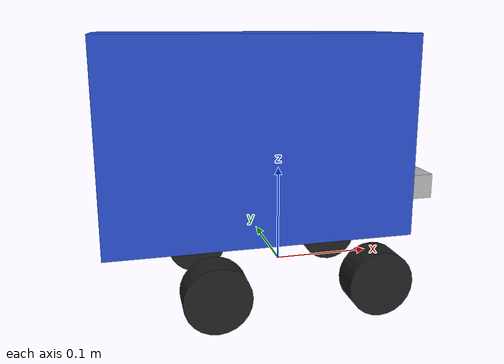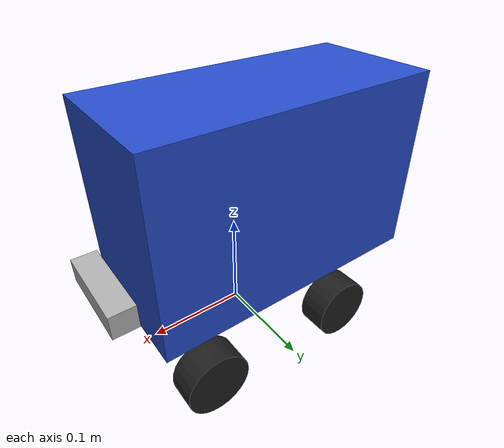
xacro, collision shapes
<?xml version="1.0"?>
<robot name="anhc_robot" xmlns:xacro="http://www.ros.org/wiki/xacro">

  <!-- ── Include subsystem xacros ────────────────────────────── -->
  <xacro:include filename="$(find anhc_robot_description)/urdf/mech/anhc_base.xacro"/>
  <xacro:include filename="$(find anhc_robot_description)/urdf/sensors/anhc_lidar_2d.xacro"/>
  <xacro:include filename="$(find anhc_robot_description)/urdf/sensors/anhc_camera.xacro"/>
  <xacro:include filename="$(find anhc_robot_description)/urdf/control/anhc_control.xacro"/>

  <!-- ── Material Definitions ────────────────────────────────── -->
  <material name="anhc_chassis_material"> <color rgba="0.2 0.5 0.8 1.0"/> </material>
  <material name="anhc_wheel_material">   <color rgba="0.1 0.1 0.1 1.0"/> </material>
  <material name="anhc_lidar_material">   <color rgba="0.8 0.1 0.1 1.0"/> </material>
  <material name="anhc_lidar2d_material"> <color rgba="0.1 0.8 0.1 1.0"/> </material>
  <material name="anhc_camera_material">  <color rgba="0.1 0.1 0.1 1.0"/> </material>

  <!-- ── Instantiate Mechanical Base ─────────────────────────── -->
  <!-- (base.xacro defines base_footprint, base_link, 4 wheels) -->

  <!-- 3D LiDAR is disabled for the old robot profile -->

  <!-- ── Place 2D LiDAR on top-front of chassis ───────────────── -->
  <!-- Tuned to stay visually attached to the body mesh -->
  <xacro:anhc_lidar_2d
    parent_link="base_link"
    xyz="0.03 0.0 0.08"
    rpy="0 0 0"/>

  <!-- ── Place RGB Camera on top-front, near LiDAR ────────────── -->
  <xacro:anhc_camera
    parent_link="base_link"
    xyz="0.14 0.0 0.05"
    rpy="0 0 0"/>

  <!-- ── Instantiate ros2_control + Gazebo plugins ────────────── -->
  <xacro:anhc_control/>

  <!-- ── IMU Link (for TF completeness) ──────────────────────── -->
  <link name="anhc_imu_link">
    <inertial>
      <mass value="0.01"/>
      <inertia ixx="0.0001" ixy="0" ixz="0"
               iyy="0.0001" iyz="0"
               izz="0.0001"/>
    </inertial>
  </link>
  <joint name="anhc_imu_joint" type="fixed">
    <parent link="base_link"/>
    <child  link="anhc_imu_link"/>
    <origin xyz="0 0 0" rpy="0 0 0"/>
  </joint>

  <!-- ── Gazebo Physics Properties ────────────────────────────── -->
  <gazebo reference="base_link">
    <mu1>0.8</mu1>
    <mu2>0.8</mu2>
    <kp>1e6</kp>
    <kd>1.0</kd>
    <material>Gazebo/Blue</material>
  </gazebo>

  <gazebo reference="front_left_wheel_link">
    <mu1>1.0</mu1><mu2>1.0</mu2><kp>1e6</kp><kd>1.0</kd>
    <material>Gazebo/Black</material>
  </gazebo>
  <gazebo reference="front_right_wheel_link">
    <mu1>1.0</mu1><mu2>1.0</mu2><kp>1e6</kp><kd>1.0</kd>
    <material>Gazebo/Black</material>
  </gazebo>
  <gazebo reference="back_left_wheel_link">
    <mu1>1.0</mu1><mu2>1.0</mu2><kp>1e6</kp><kd>1.0</kd>
    <material>Gazebo/Black</material>
  </gazebo>
  <gazebo reference="back_right_wheel_link">
    <mu1>1.0</mu1><mu2>1.0</mu2><kp>1e6</kp><kd>1.0</kd>
    <material>Gazebo/Black</material>
  </gazebo>

</robot>

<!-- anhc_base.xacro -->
<robot xmlns:xacro="http://www.ros.org/wiki/xacro">

  <!-- Rosmaster X3 dimensions -->
  <xacro:property name="total_width" value="0.19940"/>
  <xacro:property name="wheel_width" value="0.0304"/>
  <xacro:property name="wheel_radius" value="0.0325"/>
  <xacro:property name="total_height" value="0.26225"/>
  <xacro:property name="base_length" value="0.300"/>
  <xacro:property name="centered_length" value="0.238"/>
  <xacro:property name="base_x_offset" value="${(centered_length - base_length) / 2}"/>
  <xacro:property name="base_size_x" value="${base_length}"/>
  <xacro:property name="base_size_y" value="${total_width - (2 * wheel_width)}"/>
  <xacro:property name="base_size_z" value="${total_height - (2 * wheel_radius)}"/>
  <xacro:property name="base_mass" value="4.6"/>

  <xacro:property name="wheel_mass" value="0.091"/>
  <xacro:property name="wheel_xoff" value="0.08"/>
  <xacro:property name="wheel_yoff" value="-0.01"/>
  <xacro:property name="wheel_separation" value="0.169"/>

  <xacro:macro name="rosmaster_wheel" params="side joint_name x_reflect y_reflect mesh_name">
    <link name="${side}_wheel_link">
      <visual>
        <origin xyz="0 0 0" rpy="${pi/2} 0 0"/>
        <geometry>
          <mesh filename="file://$(find anhc_robot_description)/meshes/rosmaster_x3/visual/${mesh_name}"/>
        </geometry>
      </visual>
      <collision>
        <origin xyz="0 0 0" rpy="${pi/2} 0 0"/>
        <geometry>
          <cylinder radius="${wheel_radius}" length="${wheel_width}"/>
        </geometry>
      </collision>
      <inertial>
        <origin xyz="0 0 0" rpy="0 0 0"/>
        <mass value="${wheel_mass}"/>
        <inertia
          ixx="${(wheel_mass/12.0) * (3*wheel_radius*wheel_radius + wheel_width*wheel_width)}" ixy="0" ixz="0"
          iyy="${(wheel_mass/2.0) * (wheel_radius*wheel_radius)}" iyz="0"
          izz="${(wheel_mass/12.0) * (3*wheel_radius*wheel_radius + wheel_width*wheel_width)}"/>
      </inertial>
    </link>

    <joint name="${joint_name}" type="continuous">
      <axis xyz="0 1 0"/>
      <parent link="base_link"/>
      <child link="${side}_wheel_link"/>
      <origin xyz="${x_reflect*wheel_xoff} ${y_reflect*(wheel_separation/2+wheel_yoff)} ${-wheel_radius}" rpy="0 0 0"/>
    </joint>

    <gazebo reference="${side}_wheel_link">
      <mu1>1.0</mu1>
      <mu2>0.0</mu2>
    </gazebo>
  </xacro:macro>

  <link name="base_footprint"/>
  <link name="base_link">
    <visual>
      <geometry>
        <mesh filename="file://$(find anhc_robot_description)/meshes/rosmaster_x3/visual/base_link_X3.STL"/>
      </geometry>
      <origin xyz="0 0 0" rpy="0 0 0"/>
    </visual>
    <collision>
      <geometry>
        <box size="${base_size_x} ${base_size_y} ${base_size_z}"/>
      </geometry>
      <origin xyz="${base_x_offset} 0 ${base_size_z/2 + wheel_radius/4}" rpy="0 0 0"/>
    </collision>
    <inertial>
      <origin xyz="${base_x_offset} 0 ${base_size_z/2 + wheel_radius/4}" rpy="0 0 0"/>
      <mass value="${base_mass}"/>
      <inertia
        ixx="${(1/12) * base_mass * ((base_size_y * base_size_y) + (base_size_z * base_size_z))}" ixy="0.0" ixz="0.0"
        iyy="${(1/12) * base_mass * ((base_size_x * base_size_x) + (base_size_z * base_size_z))}" iyz="0.0"
        izz="${(1/12) * base_mass * ((base_size_x * base_size_x) + (base_size_y * base_size_y))}"/>
    </inertial>
  </link>

  <joint name="base_joint" type="fixed">
    <parent link="base_footprint"/>
    <child link="base_link"/>
    <origin xyz="0 0 ${wheel_radius}" rpy="0 0 0"/>
  </joint>

  <xacro:rosmaster_wheel side="front_left"  joint_name="front_left_wheel_joint"  x_reflect=" 1" y_reflect=" 1" mesh_name="front_left_wheel_X3.STL"/>
  <xacro:rosmaster_wheel side="front_right" joint_name="front_right_wheel_joint" x_reflect=" 1" y_reflect="-1" mesh_name="front_right_wheel_X3.STL"/>
  <xacro:rosmaster_wheel side="back_left"   joint_name="back_left_wheel_joint"   x_reflect="-1" y_reflect=" 1" mesh_name="back_left_wheel_X3.STL"/>
  <xacro:rosmaster_wheel side="back_right"  joint_name="back_right_wheel_joint"  x_reflect="-1" y_reflect="-1" mesh_name="back_right_wheel_X3.STL"/>

</robot>

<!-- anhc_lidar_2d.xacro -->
<robot xmlns:xacro="http://www.ros.org/wiki/xacro">
  <xacro:macro name="anhc_lidar_2d" params="parent_link xyz rpy">

    <link name="laser_frame">
      <visual>
        <!-- Original RPLidar mesh, rotated to match ROS X-forward convention -->
        <origin xyz="0 0 0" rpy="${-pi/2} 0 0"/>
        <geometry>
          <mesh filename="file://$(find anhc_robot_description)/meshes/rplidar/rplidar_s2.stl" scale="0.001 0.001 0.001"/>
        </geometry>
        <material name="anhc_lidar2d_mat">
          <color rgba="0.1 0.1 0.1 1.0"/>
        </material>
      </visual>
      <collision>
        <origin xyz="0 0 0" rpy="0 0 0"/>
        <geometry><cylinder radius="0.0385" length="0.0398"/></geometry>
      </collision>
      <inertial>
        <mass value="0.185"/>
        <inertia ixx="0.000128" ixy="0" ixz="0"
                 iyy="0.000128" iyz="0" izz="0.000659"/>
      </inertial>
    </link>

    <joint name="anhc_lidar_2d_joint" type="fixed">
      <parent link="${parent_link}"/>
      <child  link="laser_frame"/>
      <origin xyz="${xyz}" rpy="${rpy}"/>
    </joint>

    <gazebo reference="laser_frame">
      <sensor name="anhc_lidar_2d_sensor" type="lidar">
        <pose>0 0 0 0 0 0</pose>
        <topic>/anhc/scan</topic>
        <frame_id>laser_frame</frame_id>
        <update_rate>10</update_rate>
        <always_on>true</always_on>
        <visualize>false</visualize>
        <ray>
          <scan>
            <horizontal>
              <samples>360</samples>
              <resolution>1</resolution>
              <min_angle>-3.14159</min_angle>
              <max_angle>3.14159</max_angle>
            </horizontal>
            <vertical>
              <samples>1</samples>
              <resolution>1</resolution>
              <min_angle>0</min_angle>
              <max_angle>0</max_angle>
            </vertical>
          </scan>
          <range>
            <min>0.20</min>
            <max>30.0</max>
            <resolution>0.013</resolution>
          </range>
        </ray>
      </sensor>
    </gazebo>

  </xacro:macro>
</robot>

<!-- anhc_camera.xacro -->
<robot xmlns:xacro="http://www.ros.org/wiki/xacro">

  <xacro:macro name="anhc_camera" params="parent_link xyz rpy">

    <link name="camera_link">
      <visual>
        <!-- Original D435 mesh with corrected local orientation -->
        <origin xyz="0 0 0" rpy="${pi/2} 0 ${pi/2}"/>
        <geometry>
          <mesh filename="file://$(find anhc_robot_description)/meshes/intel_realsense/visual/d435.stl"/>
        </geometry>
      </visual>
      <collision>
        <origin xyz="0 0 0" rpy="0 0 0"/>
        <geometry><box size="0.025 0.09 0.025"/></geometry>
      </collision>
      <inertial>
        <mass value="0.02"/>
        <inertia ixx="0.0001" ixy="0" ixz="0"
                 iyy="0.0001" iyz="0" izz="0.0001"/>
      </inertial>
    </link>

    <joint name="camera_joint" type="fixed">
      <parent link="${parent_link}"/>
      <child  link="camera_link"/>
      <origin xyz="${xyz}" rpy="${rpy}"/>
    </joint>

    <link name="camera_optical_link"/>
    <joint name="camera_optical_joint" type="fixed">
      <parent link="camera_link"/>
      <child  link="camera_optical_link"/>
      <origin xyz="0 0 0" rpy="${-pi/2} 0 ${-pi/2}"/>
    </joint>

    <gazebo reference="camera_link">
      <sensor name="anhc_camera_sensor" type="camera">
        <topic>/anhc/camera/image</topic>
        <frame_id>camera_optical_link</frame_id>
        <update_rate>30</update_rate>
        <always_on>true</always_on>
        <visualize>false</visualize>
        <camera>
          <horizontal_fov>1.3962634</horizontal_fov>
          <image>
            <width>640</width>
            <height>480</height>
            <format>R8G8B8</format>
          </image>
          <clip>
            <near>0.02</near>
            <far>300</far>
          </clip>
          <noise>
            <type>gaussian</type>
            <mean>0.0</mean>
            <stddev>0.005</stddev>
          </noise>
        </camera>
      </sensor>
    </gazebo>

  </xacro:macro>
</robot>
